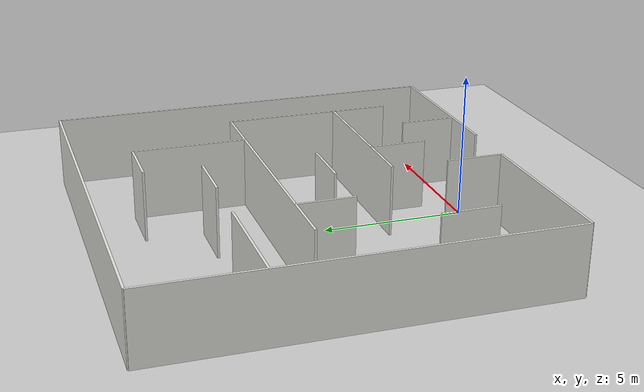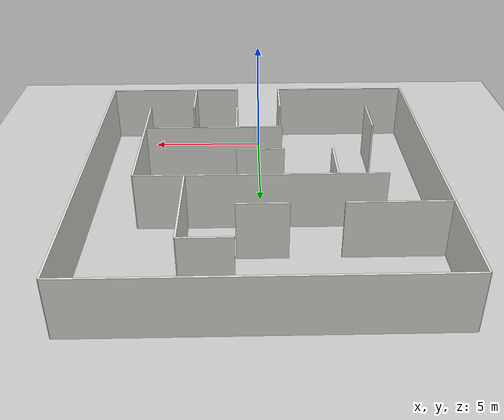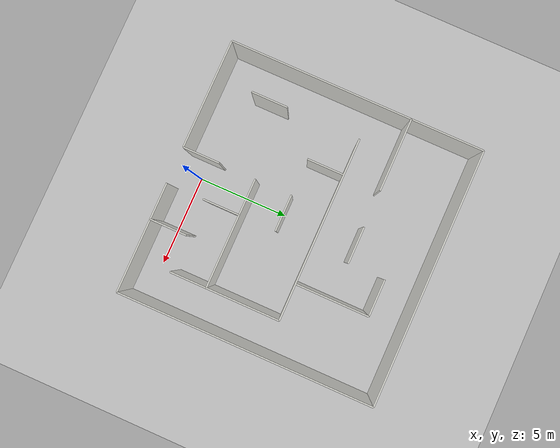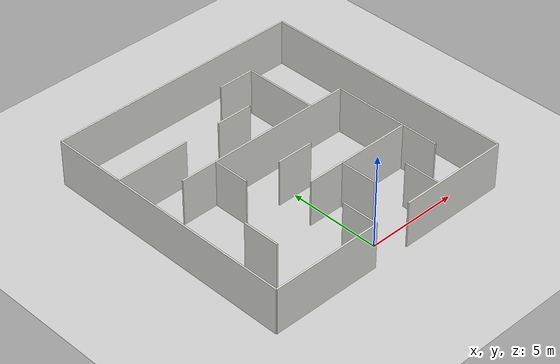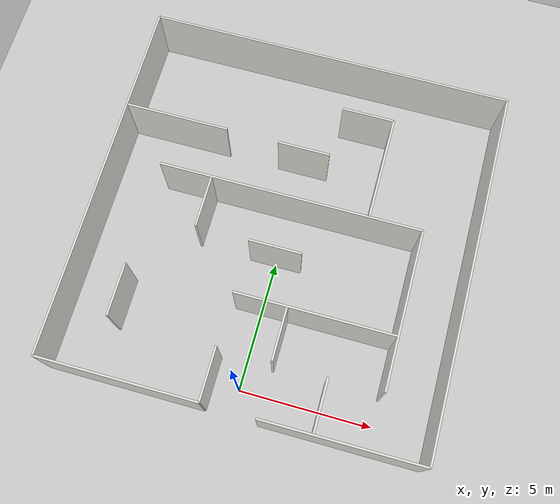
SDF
<?xml version="1.0" encoding="UTF-8"?>
<sdf version="1.9">
  <world name="nidar_sim">
    <physics type="ode">
      <max_step_size>0.004</max_step_size>
      <real_time_factor>1.0</real_time_factor>
      <real_time_update_rate>250</real_time_update_rate>
    </physics>
    <gravity>0 0 -9.8</gravity>
    <magnetic_field>6e-06 2.3e-05 -4.2e-05</magnetic_field>
    <atmosphere type="adiabatic"/>
    <scene>
      <grid>false</grid>
      <ambient>0.4 0.4 0.4 1</ambient>
      <background>0.7 0.7 0.7 1</background>
      <shadows>true</shadows>
    </scene>
    <model name="ground_plane">
      <static>true</static>
      <link name="link">
        <collision name="collision">
          <geometry><plane><normal>0 0 1</normal><size>1 1</size></plane></geometry>
          <surface><friction><ode/></friction><bounce/><contact/></surface>
        </collision>
        <visual name="visual">
          <geometry><plane><normal>0 0 1</normal><size>100 100</size></plane></geometry>
          <material>
            <ambient>0.8 0.8 0.8 1</ambient>
            <diffuse>0.8 0.8 0.8 1</diffuse>
            <specular>0.8 0.8 0.8 1</specular>
          </material>
        </visual>
        <pose>0 0 0 0 -0 0</pose>
      </link>
      <pose>0 0 0 0 -0 0</pose>
    </model>
    <light name="sunUTC" type="directional">
      <pose>0 0 500 0 -0 0</pose>
      <cast_shadows>true</cast_shadows>
      <intensity>1</intensity>
      <direction>0.001 0.625 -0.78</direction>
      <diffuse>0.904 0.904 0.904 1</diffuse>
      <specular>0.271 0.271 0.271 1</specular>
      <attenuation>
        <range>2000</range><linear>0</linear><constant>1</constant><quadratic>0</quadratic>
      </attenuation>
      <spot><inner_angle>0</inner_angle><outer_angle>0</outer_angle><falloff>0</falloff></spot>
    </light>
    <spherical_coordinates>
      <surface_model>EARTH_WGS84</surface_model>
      <world_frame_orientation>ENU</world_frame_orientation>
      <latitude_deg>47.397971057728974</latitude_deg>
      <longitude_deg>8.546163739800146</longitude_deg>
      <elevation>0</elevation>
    </spherical_coordinates>
    <model name="maze">
      <static>true</static>
      <link name="walls">
        <collision name="c0">
          <pose>3.000 0.000 1.250 0 0 0</pose>
          <geometry><box><size>0.080 2.000 2.500</size></box></geometry>
        </collision>
        <visual name="v0">
          <pose>3.000 0.000 1.250 0 0 0</pose>
          <geometry><box><size>0.080 2.000 2.500</size></box></geometry>
          <material>
            <ambient>0.9 0.9 0.87 1</ambient>
            <diffuse>0.9 0.9 0.87 1</diffuse>
            <specular>0.1 0.1 0.1 1</specular>
          </material>
        </visual>
        <collision name="c1">
          <pose>3.000 9.000 1.250 0 0 0</pose>
          <geometry><box><size>0.080 4.000 2.500</size></box></geometry>
        </collision>
        <visual name="v1">
          <pose>3.000 9.000 1.250 0 0 0</pose>
          <geometry><box><size>0.080 4.000 2.500</size></box></geometry>
          <material>
            <ambient>0.9 0.9 0.87 1</ambient>
            <diffuse>0.9 0.9 0.87 1</diffuse>
            <specular>0.1 0.1 0.1 1</specular>
          </material>
        </visual>
        <collision name="c2">
          <pose>-7.000 6.000 1.250 0 0 0</pose>
          <geometry><box><size>0.080 14.000 2.500</size></box></geometry>
        </collision>
        <visual name="v2">
          <pose>-7.000 6.000 1.250 0 0 0</pose>
          <geometry><box><size>0.080 14.000 2.500</size></box></geometry>
          <material>
            <ambient>0.9 0.9 0.87 1</ambient>
            <diffuse>0.9 0.9 0.87 1</diffuse>
            <specular>0.1 0.1 0.1 1</specular>
          </material>
        </visual>
        <collision name="c3">
          <pose>7.000 6.000 1.250 0 0 0</pose>
          <geometry><box><size>0.080 14.000 2.500</size></box></geometry>
        </collision>
        <visual name="v3">
          <pose>7.000 6.000 1.250 0 0 0</pose>
          <geometry><box><size>0.080 14.000 2.500</size></box></geometry>
          <material>
            <ambient>0.9 0.9 0.87 1</ambient>
            <diffuse>0.9 0.9 0.87 1</diffuse>
            <specular>0.1 0.1 0.1 1</specular>
          </material>
        </visual>
        <collision name="c4">
          <pose>5.000 4.000 1.250 0 0 0</pose>
          <geometry><box><size>0.080 6.000 2.500</size></box></geometry>
        </collision>
        <visual name="v4">
          <pose>5.000 4.000 1.250 0 0 0</pose>
          <geometry><box><size>0.080 6.000 2.500</size></box></geometry>
          <material>
            <ambient>0.9 0.9 0.87 1</ambient>
            <diffuse>0.9 0.9 0.87 1</diffuse>
            <specular>0.1 0.1 0.1 1</specular>
          </material>
        </visual>
        <collision name="c5">
          <pose>-1.000 0.000 1.250 0 0 0</pose>
          <geometry><box><size>0.080 2.000 2.500</size></box></geometry>
        </collision>
        <visual name="v5">
          <pose>-1.000 0.000 1.250 0 0 0</pose>
          <geometry><box><size>0.080 2.000 2.500</size></box></geometry>
          <material>
            <ambient>0.9 0.9 0.87 1</ambient>
            <diffuse>0.9 0.9 0.87 1</diffuse>
            <specular>0.1 0.1 0.1 1</specular>
          </material>
        </visual>
        <collision name="c6">
          <pose>1.000 2.000 1.250 0 0 0</pose>
          <geometry><box><size>0.080 2.000 2.500</size></box></geometry>
        </collision>
        <visual name="v6">
          <pose>1.000 2.000 1.250 0 0 0</pose>
          <geometry><box><size>0.080 2.000 2.500</size></box></geometry>
          <material>
            <ambient>0.9 0.9 0.87 1</ambient>
            <diffuse>0.9 0.9 0.87 1</diffuse>
            <specular>0.1 0.1 0.1 1</specular>
          </material>
        </visual>
        <collision name="c7">
          <pose>-5.000 2.000 1.250 0 0 0</pose>
          <geometry><box><size>0.080 2.000 2.500</size></box></geometry>
        </collision>
        <visual name="v7">
          <pose>-5.000 2.000 1.250 0 0 0</pose>
          <geometry><box><size>0.080 2.000 2.500</size></box></geometry>
          <material>
            <ambient>0.9 0.9 0.87 1</ambient>
            <diffuse>0.9 0.9 0.87 1</diffuse>
            <specular>0.1 0.1 0.1 1</specular>
          </material>
        </visual>
        <collision name="c8">
          <pose>-3.000 6.000 1.250 0 0 0</pose>
          <geometry><box><size>0.080 2.000 2.500</size></box></geometry>
        </collision>
        <visual name="v8">
          <pose>-3.000 6.000 1.250 0 0 0</pose>
          <geometry><box><size>0.080 2.000 2.500</size></box></geometry>
          <material>
            <ambient>0.9 0.9 0.87 1</ambient>
            <diffuse>0.9 0.9 0.87 1</diffuse>
            <specular>0.1 0.1 0.1 1</specular>
          </material>
        </visual>
        <collision name="c9">
          <pose>-4.000 -1.000 1.250 0 0 0</pose>
          <geometry><box><size>6.000 0.080 2.500</size></box></geometry>
        </collision>
        <visual name="v9">
          <pose>-4.000 -1.000 1.250 0 0 0</pose>
          <geometry><box><size>6.000 0.080 2.500</size></box></geometry>
          <material>
            <ambient>0.9 0.9 0.87 1</ambient>
            <diffuse>0.9 0.9 0.87 1</diffuse>
            <specular>0.1 0.1 0.1 1</specular>
          </material>
        </visual>
        <collision name="c10">
          <pose>4.000 -1.000 1.250 0 0 0</pose>
          <geometry><box><size>6.000 0.080 2.500</size></box></geometry>
        </collision>
        <visual name="v10">
          <pose>4.000 -1.000 1.250 0 0 0</pose>
          <geometry><box><size>6.000 0.080 2.500</size></box></geometry>
          <material>
            <ambient>0.9 0.9 0.87 1</ambient>
            <diffuse>0.9 0.9 0.87 1</diffuse>
            <specular>0.1 0.1 0.1 1</specular>
          </material>
        </visual>
        <collision name="c11">
          <pose>0.000 7.000 1.250 0 0 0</pose>
          <geometry><box><size>10.000 0.080 2.500</size></box></geometry>
        </collision>
        <visual name="v11">
          <pose>0.000 7.000 1.250 0 0 0</pose>
          <geometry><box><size>10.000 0.080 2.500</size></box></geometry>
          <material>
            <ambient>0.9 0.9 0.87 1</ambient>
            <diffuse>0.9 0.9 0.87 1</diffuse>
            <specular>0.1 0.1 0.1 1</specular>
          </material>
        </visual>
        <collision name="c12">
          <pose>0.000 13.000 1.250 0 0 0</pose>
          <geometry><box><size>14.000 0.080 2.500</size></box></geometry>
        </collision>
        <visual name="v12">
          <pose>0.000 13.000 1.250 0 0 0</pose>
          <geometry><box><size>14.000 0.080 2.500</size></box></geometry>
          <material>
            <ambient>0.9 0.9 0.87 1</ambient>
            <diffuse>0.9 0.9 0.87 1</diffuse>
            <specular>0.1 0.1 0.1 1</specular>
          </material>
        </visual>
        <collision name="c13">
          <pose>2.000 11.000 1.250 0 0 0</pose>
          <geometry><box><size>2.000 0.080 2.500</size></box></geometry>
        </collision>
        <visual name="v13">
          <pose>2.000 11.000 1.250 0 0 0</pose>
          <geometry><box><size>2.000 0.080 2.500</size></box></geometry>
          <material>
            <ambient>0.9 0.9 0.87 1</ambient>
            <diffuse>0.9 0.9 0.87 1</diffuse>
            <specular>0.1 0.1 0.1 1</specular>
          </material>
        </visual>
        <collision name="c14">
          <pose>-5.000 9.000 1.250 0 0 0</pose>
          <geometry><box><size>4.000 0.080 2.500</size></box></geometry>
        </collision>
        <visual name="v14">
          <pose>-5.000 9.000 1.250 0 0 0</pose>
          <geometry><box><size>4.000 0.080 2.500</size></box></geometry>
          <material>
            <ambient>0.9 0.9 0.87 1</ambient>
            <diffuse>0.9 0.9 0.87 1</diffuse>
            <specular>0.1 0.1 0.1 1</specular>
          </material>
        </visual>
        <collision name="c15">
          <pose>0.000 9.000 1.250 0 0 0</pose>
          <geometry><box><size>2.000 0.080 2.500</size></box></geometry>
        </collision>
        <visual name="v15">
          <pose>0.000 9.000 1.250 0 0 0</pose>
          <geometry><box><size>2.000 0.080 2.500</size></box></geometry>
          <material>
            <ambient>0.9 0.9 0.87 1</ambient>
            <diffuse>0.9 0.9 0.87 1</diffuse>
            <specular>0.1 0.1 0.1 1</specular>
          </material>
        </visual>
        <collision name="c16">
          <pose>2.000 3.000 1.250 0 0 0</pose>
          <geometry><box><size>6.000 0.080 2.500</size></box></geometry>
        </collision>
        <visual name="v16">
          <pose>2.000 3.000 1.250 0 0 0</pose>
          <geometry><box><size>6.000 0.080 2.500</size></box></geometry>
          <material>
            <ambient>0.9 0.9 0.87 1</ambient>
            <diffuse>0.9 0.9 0.87 1</diffuse>
            <specular>0.1 0.1 0.1 1</specular>
          </material>
        </visual>
        <collision name="c17">
          <pose>0.000 5.000 1.250 0 0 0</pose>
          <geometry><box><size>2.000 0.080 2.500</size></box></geometry>
        </collision>
        <visual name="v17">
          <pose>0.000 5.000 1.250 0 0 0</pose>
          <geometry><box><size>2.000 0.080 2.500</size></box></geometry>
          <material>
            <ambient>0.9 0.9 0.87 1</ambient>
            <diffuse>0.9 0.9 0.87 1</diffuse>
            <specular>0.1 0.1 0.1 1</specular>
          </material>
        </visual>
      </link>
      <pose>0 0 0 0 0 0</pose>
    </model>
  </world>
</sdf>
